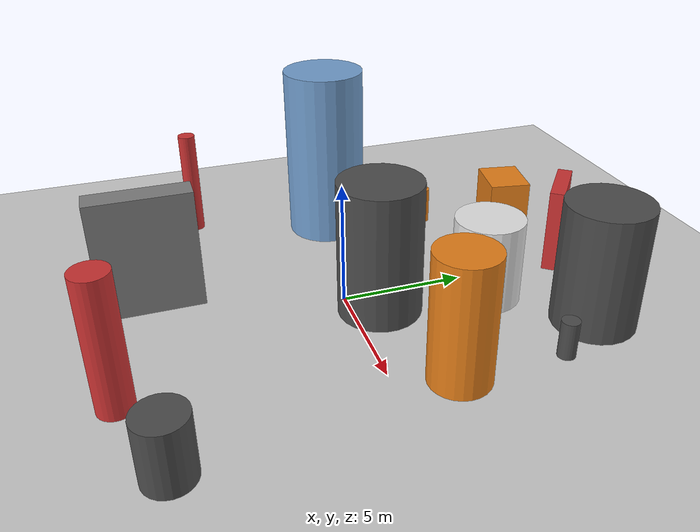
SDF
<?xml version='1.0'?>
<sdf version='1.6'>
  <world name='default'>
    <!-- Sun light -->
    <light name='sun' type='directional'>
      <cast_shadows>1</cast_shadows>
      <pose>0 0 10 0 0 0</pose>
      <diffuse>0.8 0.8 0.8 1</diffuse>
      <specular>0.2 0.2 0.2 1</specular>
      <attenuation>
        <range>1000</range>
        <constant>0.9</constant>
        <linear>0.01</linear>
        <quadratic>0.001</quadratic>
      </attenuation>
      <direction>-0.5 0.1 -0.9</direction>
    </light>

    <!-- Ground plane -->
    <model name='ground_plane'>
      <static>1</static>
      <link name='link'>
        <collision name='collision'>
          <geometry>
            <plane>
              <normal>0 0 1</normal>
              <size>100 100</size>
            </plane>
          </geometry>
          <surface>
            <contact>
              <collide_bitmask>65535</collide_bitmask>
              <ode/>
            </contact>
            <friction>
              <ode>
                <mu>100</mu>
                <mu2>50</mu2>
              </ode>
              <torsional><ode/></torsional>
            </friction>
            <bounce/>
          </surface>
          <max_contacts>10</max_contacts>
        </collision>
        <visual name='visual'>
          <cast_shadows>0</cast_shadows>
          <geometry>
            <plane>
              <normal>0 0 1</normal>
              <size>100 100</size>
            </plane>
          </geometry>
          <material>
            <script>
              <uri>file://media/materials/scripts/gazebo.material</uri>
              <n>Gazebo/Grey</n>
            </script>
          </material>
        </visual>
      </link>
    </model>

    <!-- Environment -->
    <magnetic_field>6e-06 2.3e-05 -4.2e-05</magnetic_field>
    <atmosphere type='adiabatic'/>
    <physics name='default_physics' default='0' type='ode'>
      <gravity>0 0 -9.8</gravity>
      <max_step_size>0.004</max_step_size>
      <real_time_factor>1</real_time_factor>
      <real_time_update_rate>250</real_time_update_rate>
    </physics>
    <scene>
      <ambient>0.4 0.4 0.4 1</ambient>
      <background>0.7 0.7 0.7 1</background>
      <shadows>1</shadows>
    </scene>
    <wind/>
    <spherical_coordinates>
      <surface_model>EARTH_WGS84</surface_model>
      <latitude_deg>0</latitude_deg>
      <longitude_deg>0</longitude_deg>
      <elevation>0</elevation>
      <heading_deg>0</heading_deg>
    </spherical_coordinates>

    <!-- ============ OBSTACLES (14) ============ -->
    <model name='obs_00'>
      <static>1</static>
      <link name='link'>
        <visual name='visual'>
          <geometry>
            <cylinder>
              <radius>1.6674</radius>
              <length>5.4820</length>
            </cylinder>
          </geometry>
          <material>
            <script>
              <n>Gazebo/DarkGrey</n>
              <uri>file://media/materials/scripts/gazebo.material</uri>
            </script>
            <ambient>0.3 0.3 0.3 1</ambient>
          </material>
        </visual>
        <collision name='collision'>
          <geometry>
            <cylinder>
              <radius>1.6674</radius>
              <length>5.4820</length>
            </cylinder>
          </geometry>
          <max_contacts>10</max_contacts>
          <surface>
            <contact><ode/></contact>
            <bounce/>
            <friction>
              <ode><mu>1</mu><mu2>1</mu2></ode>
              <torsional><ode/></torsional>
            </friction>
          </surface>
        </collision>
      </link>
      <pose>1.0421 1.1513 2.7410 0 0 2.9711</pose>
    </model>

    <model name='obs_01'>
      <static>1</static>
      <link name='link'>
        <visual name='visual'>
          <geometry>
            <cylinder>
              <radius>1.7236</radius>
              <length>7.5153</length>
            </cylinder>
          </geometry>
          <material>
            <script>
              <n>Gazebo/Blue</n>
              <uri>file://media/materials/scripts/gazebo.material</uri>
            </script>
            <ambient>0.447 0.624 0.812 1</ambient>
          </material>
        </visual>
        <collision name='collision'>
          <geometry>
            <cylinder>
              <radius>1.7236</radius>
              <length>7.5153</length>
            </cylinder>
          </geometry>
          <max_contacts>10</max_contacts>
          <surface>
            <contact><ode/></contact>
            <bounce/>
            <friction>
              <ode><mu>1</mu><mu2>1</mu2></ode>
              <torsional><ode/></torsional>
            </friction>
          </surface>
        </collision>
      </link>
      <pose>-6.4256 1.1819 3.7577 0 0 0.0336</pose>
    </model>

    <model name='obs_02'>
      <static>1</static>
      <link name='link'>
        <visual name='visual'>
          <geometry>
            <box>
              <size>0.6176 2.5983 3.5791</size>
            </box>
          </geometry>
          <material>
            <script>
              <n>Gazebo/Red</n>
              <uri>file://media/materials/scripts/gazebo.material</uri>
            </script>
            <ambient>0.8 0.2 0.2 1</ambient>
          </material>
        </visual>
        <collision name='collision'>
          <geometry>
            <box>
              <size>0.6176 2.5983 3.5791</size>
            </box>
          </geometry>
          <max_contacts>10</max_contacts>
          <surface>
            <contact><ode/></contact>
            <bounce/>
            <friction>
              <ode><mu>1</mu><mu2>1</mu2></ode>
              <torsional><ode/></torsional>
            </friction>
          </surface>
        </collision>
      </link>
      <pose>-0.3248 9.7702 1.7895 0 0 0.8985</pose>
    </model>

    <model name='obs_03'>
      <static>1</static>
      <link name='link'>
        <visual name='visual'>
          <geometry>
            <cylinder>
              <radius>1.3969</radius>
              <length>3.5182</length>
            </cylinder>
          </geometry>
          <material>
            <script>
              <n>Gazebo/White</n>
              <uri>file://media/materials/scripts/gazebo.material</uri>
            </script>
            <ambient>0.9 0.9 0.9 1</ambient>
          </material>
        </visual>
        <collision name='collision'>
          <geometry>
            <cylinder>
              <radius>1.3969</radius>
              <length>3.5182</length>
            </cylinder>
          </geometry>
          <max_contacts>10</max_contacts>
          <surface>
            <contact><ode/></contact>
            <bounce/>
            <friction>
              <ode><mu>1</mu><mu2>1</mu2></ode>
              <torsional><ode/></torsional>
            </friction>
          </surface>
        </collision>
      </link>
      <pose>1.5530 5.4839 1.7591 0 0 1.9327</pose>
    </model>

    <model name='obs_04'>
      <static>1</static>
      <link name='link'>
        <visual name='visual'>
          <geometry>
            <box>
              <size>1.0511 3.9889 4.8984</size>
            </box>
          </geometry>
          <material>
            <script>
              <n>Gazebo/Grey</n>
              <uri>file://media/materials/scripts/gazebo.material</uri>
            </script>
            <ambient>0.5 0.5 0.5 1</ambient>
          </material>
        </visual>
        <collision name='collision'>
          <geometry>
            <box>
              <size>1.0511 3.9889 4.8984</size>
            </box>
          </geometry>
          <max_contacts>10</max_contacts>
          <surface>
            <contact><ode/></contact>
            <bounce/>
            <friction>
              <ode><mu>1</mu><mu2>1</mu2></ode>
              <torsional><ode/></torsional>
            </friction>
          </surface>
        </collision>
      </link>
      <pose>-2.0374 -7.2386 2.4492 0 0 0.0009</pose>
    </model>

    <model name='obs_05'>
      <static>1</static>
      <link name='link'>
        <visual name='visual'>
          <geometry>
            <cylinder>
              <radius>0.9001</radius>
              <length>2.4022</length>
            </cylinder>
          </geometry>
          <material>
            <script>
              <n>Gazebo/DarkGrey</n>
              <uri>file://media/materials/scripts/gazebo.material</uri>
            </script>
            <ambient>0.3 0.3 0.3 1</ambient>
          </material>
        </visual>
        <collision name='collision'>
          <geometry>
            <cylinder>
              <radius>0.9001</radius>
              <length>2.4022</length>
            </cylinder>
          </geometry>
          <max_contacts>10</max_contacts>
          <surface>
            <contact><ode/></contact>
            <bounce/>
            <friction>
              <ode><mu>1</mu><mu2>1</mu2></ode>
              <torsional><ode/></torsional>
            </friction>
          </surface>
        </collision>
      </link>
      <pose>7.2766 -7.6183 1.2011 0 0 2.1038</pose>
    </model>

    <model name='obs_06'>
      <static>1</static>
      <link name='link'>
        <visual name='visual'>
          <geometry>
            <cylinder>
              <radius>0.2769</radius>
              <length>1.6312</length>
            </cylinder>
          </geometry>
          <material>
            <script>
              <n>Gazebo/Orange</n>
              <uri>file://media/materials/scripts/gazebo.material</uri>
            </script>
            <ambient>0.9 0.5 0.1 1</ambient>
          </material>
        </visual>
        <collision name='collision'>
          <geometry>
            <cylinder>
              <radius>0.2769</radius>
              <length>1.6312</length>
            </cylinder>
          </geometry>
          <max_contacts>10</max_contacts>
          <surface>
            <contact><ode/></contact>
            <bounce/>
            <friction>
              <ode><mu>1</mu><mu2>1</mu2></ode>
              <torsional><ode/></torsional>
            </friction>
          </surface>
        </collision>
      </link>
      <pose>-5.4046 5.6622 0.8156 0 0 2.3151</pose>
    </model>

    <model name='obs_07'>
      <static>1</static>
      <link name='link'>
        <visual name='visual'>
          <geometry>
            <cylinder>
              <radius>1.1844</radius>
              <length>5.0805</length>
            </cylinder>
          </geometry>
          <material>
            <script>
              <n>Gazebo/Orange</n>
              <uri>file://media/materials/scripts/gazebo.material</uri>
            </script>
            <ambient>0.9 0.5 0.1 1</ambient>
          </material>
        </visual>
        <collision name='collision'>
          <geometry>
            <cylinder>
              <radius>1.1844</radius>
              <length>5.0805</length>
            </cylinder>
          </geometry>
          <max_contacts>10</max_contacts>
          <surface>
            <contact><ode/></contact>
            <bounce/>
            <friction>
              <ode><mu>1</mu><mu2>1</mu2></ode>
              <torsional><ode/></torsional>
            </friction>
          </surface>
        </collision>
      </link>
      <pose>6.0171 2.2805 2.5403 0 0 2.2812</pose>
    </model>

    <model name='obs_08'>
      <static>1</static>
      <link name='link'>
        <visual name='visual'>
          <geometry>
            <cylinder>
              <radius>0.6615</radius>
              <length>5.2445</length>
            </cylinder>
          </geometry>
          <material>
            <script>
              <n>Gazebo/Red</n>
              <uri>file://media/materials/scripts/gazebo.material</uri>
            </script>
            <ambient>0.8 0.2 0.2 1</ambient>
          </material>
        </visual>
        <collision name='collision'>
          <geometry>
            <cylinder>
              <radius>0.6615</radius>
              <length>5.2445</length>
            </cylinder>
          </geometry>
          <max_contacts>10</max_contacts>
          <surface>
            <contact><ode/></contact>
            <bounce/>
            <friction>
              <ode><mu>1</mu><mu2>1</mu2></ode>
              <torsional><ode/></torsional>
            </friction>
          </surface>
        </collision>
      </link>
      <pose>3.6913 -8.9589 2.6223 0 0 3.0263</pose>
    </model>

    <model name='obs_09'>
      <static>1</static>
      <link name='link'>
        <visual name='visual'>
          <geometry>
            <cylinder>
              <radius>0.8973</radius>
              <length>1.0326</length>
            </cylinder>
          </geometry>
          <material>
            <script>
              <n>Gazebo/DarkGrey</n>
              <uri>file://media/materials/scripts/gazebo.material</uri>
            </script>
            <ambient>0.3 0.3 0.3 1</ambient>
          </material>
        </visual>
        <collision name='collision'>
          <geometry>
            <cylinder>
              <radius>0.8973</radius>
              <length>1.0326</length>
            </cylinder>
          </geometry>
          <max_contacts>10</max_contacts>
          <surface>
            <contact><ode/></contact>
            <bounce/>
            <friction>
              <ode><mu>1</mu><mu2>1</mu2></ode>
              <torsional><ode/></torsional>
            </friction>
          </surface>
        </collision>
      </link>
      <pose>-2.2179 2.7175 0.5163 0 0 1.4287</pose>
    </model>

    <model name='obs_10'>
      <static>1</static>
      <link name='link'>
        <visual name='visual'>
          <geometry>
            <cylinder>
              <radius>0.3470</radius>
              <length>1.5067</length>
            </cylinder>
          </geometry>
          <material>
            <script>
              <n>Gazebo/DarkGrey</n>
              <uri>file://media/materials/scripts/gazebo.material</uri>
            </script>
            <ambient>0.3 0.3 0.3 1</ambient>
          </material>
        </visual>
        <collision name='collision'>
          <geometry>
            <cylinder>
              <radius>0.3470</radius>
              <length>1.5067</length>
            </cylinder>
          </geometry>
          <max_contacts>10</max_contacts>
          <surface>
            <contact><ode/></contact>
            <bounce/>
            <friction>
              <ode><mu>1</mu><mu2>1</mu2></ode>
              <torsional><ode/></torsional>
            </friction>
          </surface>
        </collision>
      </link>
      <pose>6.0874 6.4651 0.7534 0 0 1.2791</pose>
    </model>

    <model name='obs_11'>
      <static>1</static>
      <link name='link'>
        <visual name='visual'>
          <geometry>
            <cylinder>
              <radius>0.3665</radius>
              <length>4.5930</length>
            </cylinder>
          </geometry>
          <material>
            <script>
              <n>Gazebo/Red</n>
              <uri>file://media/materials/scripts/gazebo.material</uri>
            </script>
            <ambient>0.8 0.2 0.2 1</ambient>
          </material>
        </visual>
        <collision name='collision'>
          <geometry>
            <cylinder>
              <radius>0.3665</radius>
              <length>4.5930</length>
            </cylinder>
          </geometry>
          <max_contacts>10</max_contacts>
          <surface>
            <contact><ode/></contact>
            <bounce/>
            <friction>
              <ode><mu>1</mu><mu2>1</mu2></ode>
              <torsional><ode/></torsional>
            </friction>
          </surface>
        </collision>
      </link>
      <pose>-8.2372 -4.7382 2.2965 0 0 1.0680</pose>
    </model>

    <model name='obs_12'>
      <static>1</static>
      <link name='link'>
        <visual name='visual'>
          <geometry>
            <cylinder>
              <radius>1.6543</radius>
              <length>5.0243</length>
            </cylinder>
          </geometry>
          <material>
            <script>
              <n>Gazebo/DarkGrey</n>
              <uri>file://media/materials/scripts/gazebo.material</uri>
            </script>
            <ambient>0.3 0.3 0.3 1</ambient>
          </material>
        </visual>
        <collision name='collision'>
          <geometry>
            <cylinder>
              <radius>1.6543</radius>
              <length>5.0243</length>
            </cylinder>
          </geometry>
          <max_contacts>10</max_contacts>
          <surface>
            <contact><ode/></contact>
            <bounce/>
            <friction>
              <ode><mu>1</mu><mu2>1</mu2></ode>
              <torsional><ode/></torsional>
            </friction>
          </surface>
        </collision>
      </link>
      <pose>4.4899 8.6137 2.5121 0 0 2.7524</pose>
    </model>

    <model name='obs_13'>
      <static>1</static>
      <link name='link'>
        <visual name='visual'>
          <geometry>
            <box>
              <size>1.8198 2.1927 2.2164</size>
            </box>
          </geometry>
          <material>
            <script>
              <n>Gazebo/Orange</n>
              <uri>file://media/materials/scripts/gazebo.material</uri>
            </script>
            <ambient>0.9 0.5 0.1 1</ambient>
          </material>
        </visual>
        <collision name='collision'>
          <geometry>
            <box>
              <size>1.8198 2.1927 2.2164</size>
            </box>
          </geometry>
          <max_contacts>10</max_contacts>
          <surface>
            <contact><ode/></contact>
            <bounce/>
            <friction>
              <ode><mu>1</mu><mu2>1</mu2></ode>
              <torsional><ode/></torsional>
            </friction>
          </surface>
        </collision>
      </link>
      <pose>-4.2706 9.2706 1.1082 0 0 1.3910</pose>
    </model>

    <!-- GUI camera -->
    <gui fullscreen='0'>
      <camera name='user_camera'>
        <pose>-15 0 18 0 0.85 0.15</pose>
        <view_controller>orbit</view_controller>
        <projection_type>perspective</projection_type>
      </camera>
    </gui>
  </world>
</sdf>
